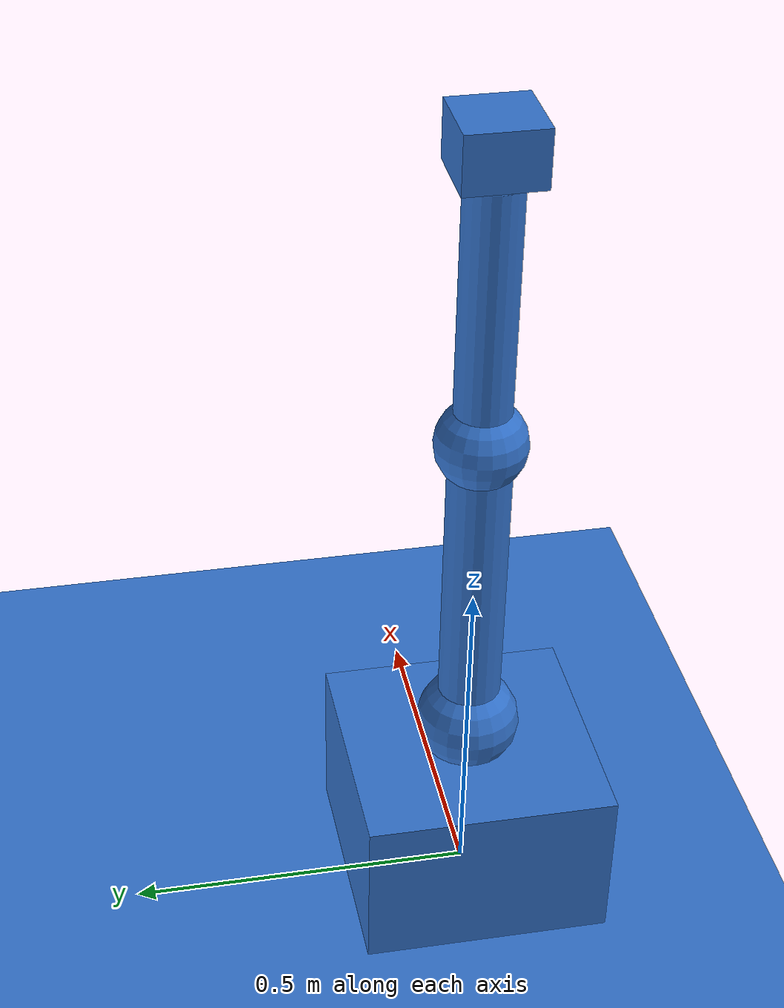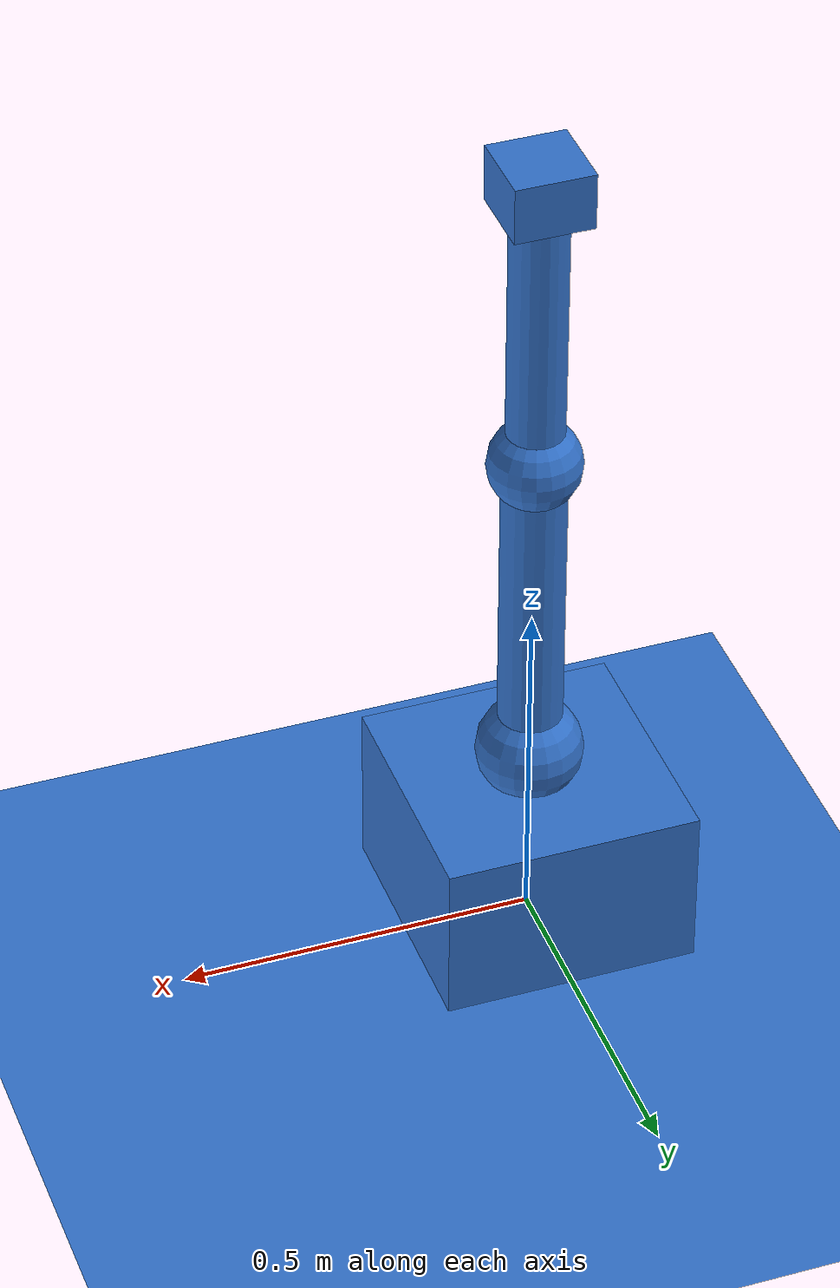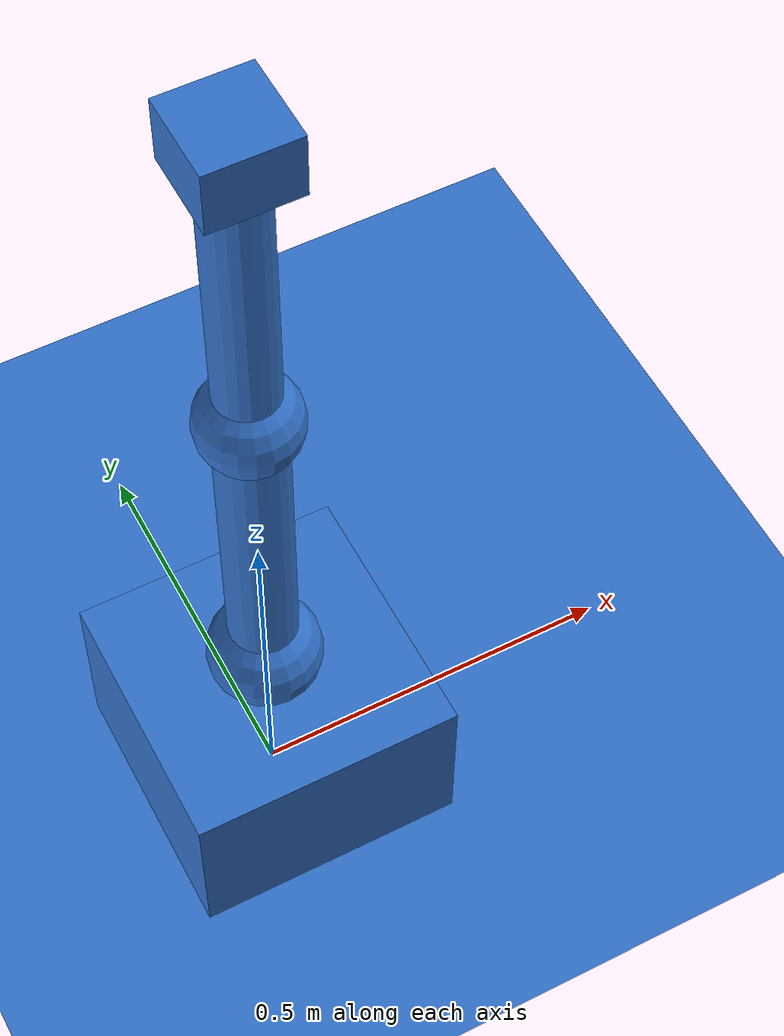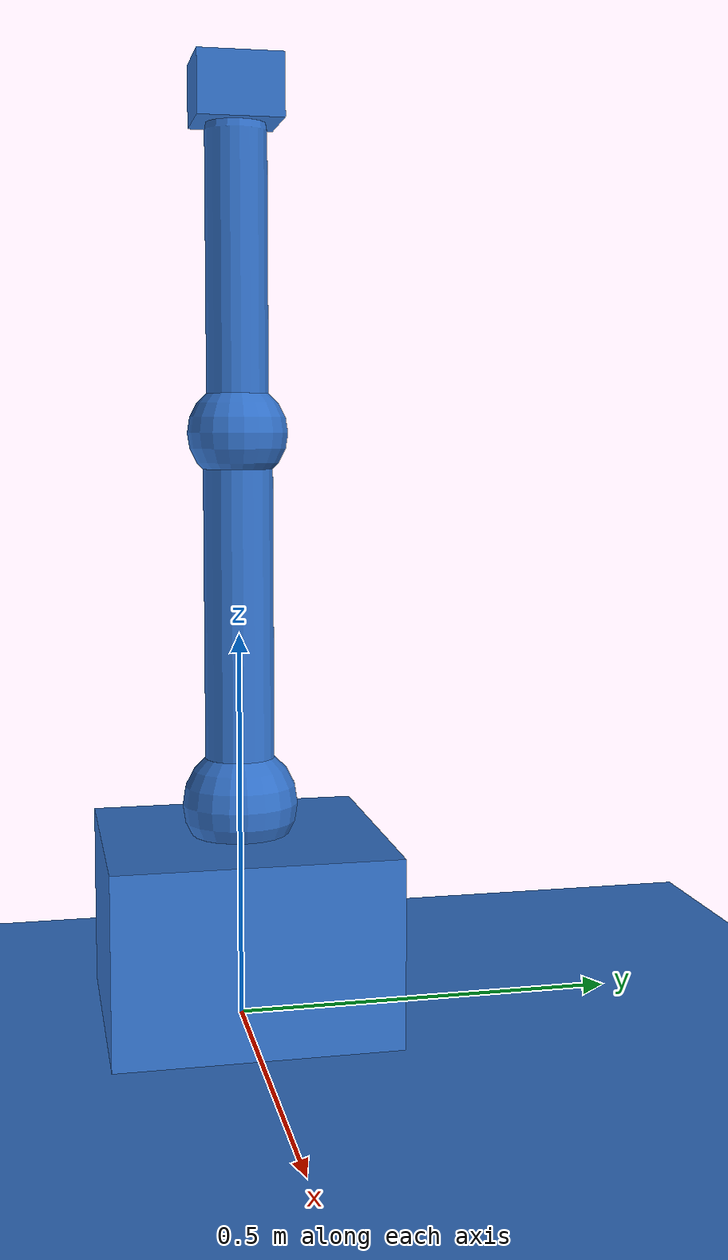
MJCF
<mujoco model="basic_arm">
  <compiler angle="radian" inertiafromgeom="true" autolimits="true"/>
  <option timestep="0.01" gravity="0 0 -9.81"/>

  <default>
    <joint damping="0.8" armature="0.01" limited="true"/>
    <geom density="500" friction="1.0 0.1 0.1" rgba="0.2 0.45 0.8 1"/>
    <motor ctrllimited="true" ctrlrange="-1 1"/>
  </default>

  <asset>
    <material name="base_mat" rgba="0.12 0.14 0.16 1"/>
    <material name="link_mat" rgba="0.2 0.45 0.8 1"/>
    <material name="joint_mat" rgba="0.95 0.72 0.25 1"/>
    <material name="floor_mat" rgba="0.82 0.84 0.86 1"/>
  </asset>

  <worldbody>
    <light name="key_light" pos="1 -3 4" dir="-0.2 0.6 -1" diffuse="0.8 0.8 0.8"/>
    <camera name="front" pos="1.8 -2.6 1.4" xyaxes="0.82 0.57 0 -0.22 0.31 0.93"/>
    <geom name="floor" type="plane" size="3 3 0.05" material="floor_mat"/>

    <body name="base" pos="0 0 0.12">
      <geom name="base_geom" type="box" size="0.18 0.18 0.12" material="base_mat"/>

      <body name="upper_arm" pos="0 0 0.16">
        <joint name="shoulder" type="hinge" axis="0 1 0" range="-1.4 1.4"/>
        <geom name="shoulder_geom" type="sphere" size="0.075" material="joint_mat"/>
        <geom name="upper_arm_geom" type="capsule" fromto="0 0 0 0 0 0.48" size="0.045" material="link_mat"/>

        <body name="forearm" pos="0 0 0.48">
          <joint name="elbow" type="hinge" axis="0 1 0" range="-1.6 0.2"/>
          <geom name="elbow_geom" type="sphere" size="0.065" material="joint_mat"/>
          <geom name="forearm_geom" type="capsule" fromto="0 0 0 0 0 0.38" size="0.04" material="link_mat"/>
          <geom name="tool_geom" type="box" pos="0 0 0.43" size="0.055 0.055 0.04" material="base_mat"/>
        </body>
      </body>
    </body>
  </worldbody>

  <actuator>
    <motor name="shoulder_motor" joint="shoulder" gear="60"/>
    <motor name="elbow_motor" joint="elbow" gear="40"/>
  </actuator>
</mujoco>
